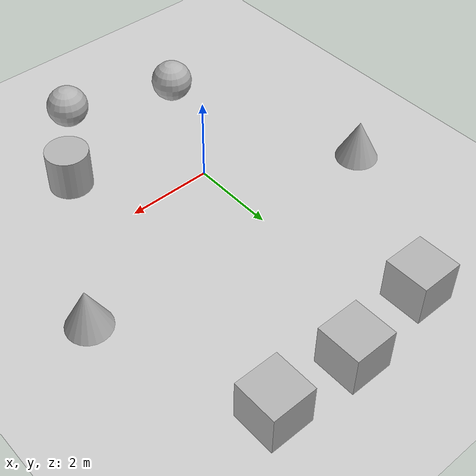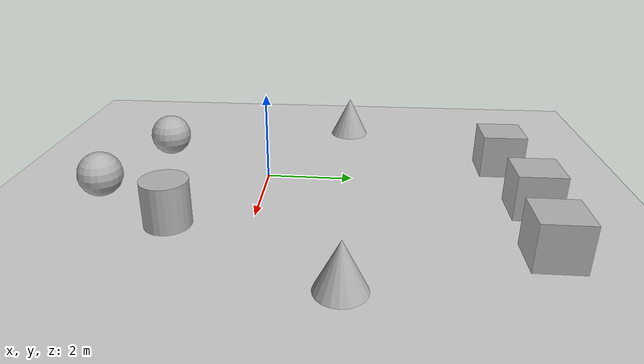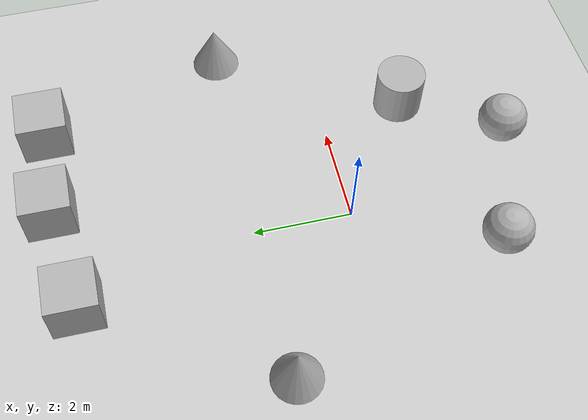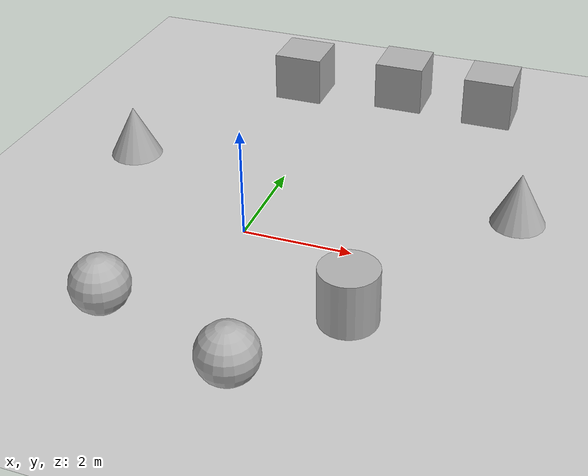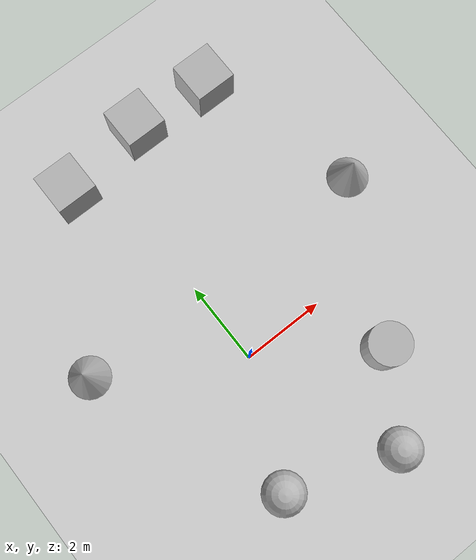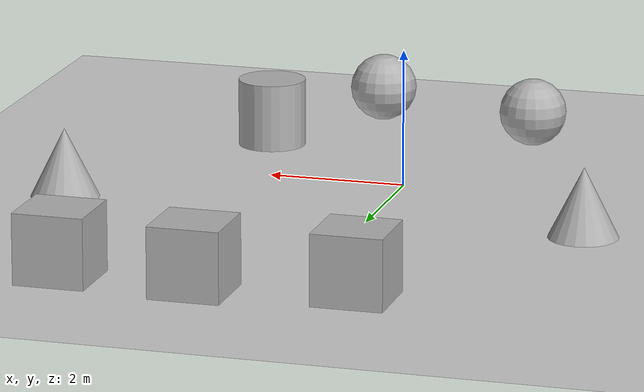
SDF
<sdf version='1.10'>
  <world name='empty'>
    <physics name='1ms' type='ignored'>
      <max_step_size>0.01</max_step_size>
      <real_time_factor>1</real_time_factor>
      <real_time_update_rate>1000</real_time_update_rate>
    </physics>
    <gravity>0 0 -9.8000000000000007</gravity>
    <magnetic_field>5.5644999999999998e-06 2.2875799999999999e-05 -4.2388400000000002e-05</magnetic_field>
    <atmosphere type='adiabatic'/>
    <scene>
      <ambient>0.400000006 0.400000006 0.400000006 1</ambient>
      <background>0.699999988 0.699999988 0.699999988 1</background>
      <shadows>true</shadows>
    </scene>
    <model name='ground_plane'>
      <static>true</static>
      <link name='link'>
        <collision name='collision'>
          <geometry>
            <plane>
              <normal>0 0 1</normal>
              <size>100 100</size>
            </plane>
          </geometry>
          <surface>
            <friction>
              <ode/>
            </friction>
            <bounce/>
            <contact/>
          </surface>
        </collision>
        <visual name='visual'>
          <geometry>
            <plane>
              <normal>0 0 1</normal>
              <size>100 100</size>
            </plane>
          </geometry>
          <material>
            <ambient>0.800000012 0.800000012 0.800000012 1</ambient>
            <diffuse>0.800000012 0.800000012 0.800000012 1</diffuse>
            <specular>0.800000012 0.800000012 0.800000012 1</specular>
          </material>
        </visual>
        <pose>0 0 0 0 0 0</pose>
        <inertial>
          <pose>0 0 0 0 0 0</pose>
          <mass>1</mass>
          <inertia>
            <ixx>1</ixx>
            <ixy>0</ixy>
            <ixz>0</ixz>
            <iyy>1</iyy>
            <iyz>0</iyz>
            <izz>1</izz>
          </inertia>
        </inertial>
        <enable_wind>false</enable_wind>
      </link>
      <pose>0 0 0 0 0 0</pose>
      <self_collide>false</self_collide>
    </model>
    <model name='cone'>
      <pose>4.5070674739859689 1.8987178639295552 0.49999999602630341 2.1472577256024191e-09 -8.0151925276328016e-09 -2.5941453501856055e-16</pose>
      <link name='cone_link'>
        <inertial>
          <inertia>
            <ixx>0.074999999999999997</ixx>
            <ixy>0</ixy>
            <ixz>0</ixz>
            <iyy>0.074999999999999997</iyy>
            <iyz>0</iyz>
            <izz>0.074999999999999997</izz>
          </inertia>
          <mass>1</mass>
          <pose>0 0 0 0 0 0</pose>
        </inertial>
        <collision name='cone_collision'>
          <geometry>
            <cone>
              <radius>0.5</radius>
              <length>1</length>
            </cone>
          </geometry>
          <surface>
            <friction>
              <ode/>
            </friction>
            <bounce/>
            <contact/>
          </surface>
        </collision>
        <visual name='cone_visual'>
          <geometry>
            <cone>
              <radius>0.5</radius>
              <length>1</length>
            </cone>
          </geometry>
          <material>
            <ambient>0.300000012 0.300000012 0.300000012 1</ambient>
            <diffuse>0.699999988 0.699999988 0.699999988 1</diffuse>
            <specular>1 1 1 1</specular>
          </material>
        </visual>
        <pose>0 0 0 0 0 0</pose>
        <enable_wind>false</enable_wind>
      </link>
      <static>false</static>
      <self_collide>false</self_collide>
    </model>
    <model name='cylinder'>
      <pose>2.4995603911911628 -1.710239607822482 0.49999999631413172 -2.7330925997471153e-18 -3.4015144727910478e-18 -2.2385645989373319e-19</pose>
      <link name='cylinder_link'>
        <inertial>
          <inertia>
            <ixx>0.14580000000000001</ixx>
            <ixy>0</ixy>
            <ixz>0</ixz>
            <iyy>0.14580000000000001</iyy>
            <iyz>0</iyz>
            <izz>0.125</izz>
          </inertia>
          <mass>1</mass>
          <pose>0 0 0 0 0 0</pose>
        </inertial>
        <collision name='cylinder_collision'>
          <geometry>
            <cylinder>
              <radius>0.5</radius>
              <length>1</length>
            </cylinder>
          </geometry>
          <surface>
            <friction>
              <ode/>
            </friction>
            <bounce/>
            <contact/>
          </surface>
        </collision>
        <visual name='cylinder_visual'>
          <geometry>
            <cylinder>
              <radius>0.5</radius>
              <length>1</length>
            </cylinder>
          </geometry>
          <material>
            <ambient>0.300000012 0.300000012 0.300000012 1</ambient>
            <diffuse>0.699999988 0.699999988 0.699999988 1</diffuse>
            <specular>1 1 1 1</specular>
          </material>
        </visual>
        <pose>0 0 0 0 0 0</pose>
        <enable_wind>false</enable_wind>
      </link>
      <static>false</static>
      <self_collide>false</self_collide>
    </model>
    <model name='box'>
      <pose>-0.87076277008966585 5.5748683440829101 0.5 0 0 0</pose>
      <link name='box_link'>
        <inertial>
          <inertia>
            <ixx>0.16666</ixx>
            <ixy>0</ixy>
            <ixz>0</ixz>
            <iyy>0.16666</iyy>
            <iyz>0</iyz>
            <izz>0.16666</izz>
          </inertia>
          <mass>1</mass>
          <pose>0 0 0 0 0 0</pose>
        </inertial>
        <collision name='box_collision'>
          <geometry>
            <box>
              <size>1 1 1</size>
            </box>
          </geometry>
          <surface>
            <friction>
              <ode/>
            </friction>
            <bounce/>
            <contact/>
          </surface>
        </collision>
        <visual name='box_visual'>
          <geometry>
            <box>
              <size>1 1 1</size>
            </box>
          </geometry>
          <material>
            <ambient>0.300000012 0.300000012 0.300000012 1</ambient>
            <diffuse>0.699999988 0.699999988 0.699999988 1</diffuse>
            <specular>1 1 1 1</specular>
          </material>
        </visual>
        <pose>0 0 0 0 0 0</pose>
        <enable_wind>false</enable_wind>
      </link>
      <static>false</static>
      <self_collide>false</self_collide>
    </model>
    <model name='box_0'>
      <pose>1.2884297873177566 5.8570983238057925 0.5 0 0 0</pose>
      <link name='box_link'>
        <inertial>
          <inertia>
            <ixx>0.16666</ixx>
            <ixy>0</ixy>
            <ixz>0</ixz>
            <iyy>0.16666</iyy>
            <iyz>0</iyz>
            <izz>0.16666</izz>
          </inertia>
          <mass>1</mass>
          <pose>0 0 0 0 0 0</pose>
        </inertial>
        <collision name='box_collision'>
          <geometry>
            <box>
              <size>1 1 1</size>
            </box>
          </geometry>
          <surface>
            <friction>
              <ode/>
            </friction>
            <bounce/>
            <contact/>
          </surface>
        </collision>
        <visual name='box_visual'>
          <geometry>
            <box>
              <size>1 1 1</size>
            </box>
          </geometry>
          <material>
            <ambient>0.300000012 0.300000012 0.300000012 1</ambient>
            <diffuse>0.699999988 0.699999988 0.699999988 1</diffuse>
            <specular>1 1 1 1</specular>
          </material>
        </visual>
        <pose>0 0 0 0 0 0</pose>
        <enable_wind>false</enable_wind>
      </link>
      <static>false</static>
      <self_collide>false</self_collide>
    </model>
    <model name='box_1'>
      <pose>3.2116736151998513 5.7537923307717147 0.5 0 0 0</pose>
      <link name='box_link'>
        <inertial>
          <inertia>
            <ixx>0.16666</ixx>
            <ixy>0</ixy>
            <ixz>0</ixz>
            <iyy>0.16666</iyy>
            <iyz>0</iyz>
            <izz>0.16666</izz>
          </inertia>
          <mass>1</mass>
          <pose>0 0 0 0 0 0</pose>
        </inertial>
        <collision name='box_collision'>
          <geometry>
            <box>
              <size>1 1 1</size>
            </box>
          </geometry>
          <surface>
            <friction>
              <ode/>
            </friction>
            <bounce/>
            <contact/>
          </surface>
        </collision>
        <visual name='box_visual'>
          <geometry>
            <box>
              <size>1 1 1</size>
            </box>
          </geometry>
          <material>
            <ambient>0.300000012 0.300000012 0.300000012 1</ambient>
            <diffuse>0.699999988 0.699999988 0.699999988 1</diffuse>
            <specular>1 1 1 1</specular>
          </material>
        </visual>
        <pose>0 0 0 0 0 0</pose>
        <enable_wind>false</enable_wind>
      </link>
      <static>false</static>
      <self_collide>false</self_collide>
    </model>
    <model name='sphere'>
      <pose>-1.2581936727758221 -2.7498126592616607 0.5 0 0 0</pose>
      <link name='sphere_link'>
        <inertial>
          <inertia>
            <ixx>0.10000000000000001</ixx>
            <ixy>0</ixy>
            <ixz>0</ixz>
            <iyy>0.10000000000000001</iyy>
            <iyz>0</iyz>
            <izz>0.10000000000000001</izz>
          </inertia>
          <mass>1</mass>
          <pose>0 0 0 0 0 0</pose>
        </inertial>
        <collision name='sphere_collision'>
          <geometry>
            <sphere>
              <radius>0.5</radius>
            </sphere>
          </geometry>
          <surface>
            <friction>
              <ode/>
            </friction>
            <bounce/>
            <contact/>
          </surface>
        </collision>
        <visual name='sphere_visual'>
          <geometry>
            <sphere>
              <radius>0.5</radius>
            </sphere>
          </geometry>
          <material>
            <ambient>0.300000012 0.300000012 0.300000012 1</ambient>
            <diffuse>0.699999988 0.699999988 0.699999988 1</diffuse>
            <specular>1 1 1 1</specular>
          </material>
        </visual>
        <pose>0 0 0 0 0 0</pose>
        <enable_wind>false</enable_wind>
      </link>
      <static>false</static>
      <self_collide>false</self_collide>
    </model>
    <model name='sphere_0'>
      <pose>1.288429648377158 -3.5908630058379987 0.5 0 0 0</pose>
      <link name='sphere_link'>
        <inertial>
          <inertia>
            <ixx>0.10000000000000001</ixx>
            <ixy>0</ixy>
            <ixz>0</ixz>
            <iyy>0.10000000000000001</iyy>
            <iyz>0</iyz>
            <izz>0.10000000000000001</izz>
          </inertia>
          <mass>1</mass>
          <pose>0 0 0 0 0 0</pose>
        </inertial>
        <collision name='sphere_collision'>
          <geometry>
            <sphere>
              <radius>0.5</radius>
            </sphere>
          </geometry>
          <surface>
            <friction>
              <ode/>
            </friction>
            <bounce/>
            <contact/>
          </surface>
        </collision>
        <visual name='sphere_visual'>
          <geometry>
            <sphere>
              <radius>0.5</radius>
            </sphere>
          </geometry>
          <material>
            <ambient>0.300000012 0.300000012 0.300000012 1</ambient>
            <diffuse>0.699999988 0.699999988 0.699999988 1</diffuse>
            <specular>1 1 1 1</specular>
          </material>
        </visual>
        <pose>0 0 0 0 0 0</pose>
        <enable_wind>false</enable_wind>
      </link>
      <static>false</static>
      <self_collide>false</self_collide>
    </model>
    <model name='cone_0'>
      <pose>-3.0973756209739878 1.8763904915638487 0.5 0 0 0</pose>
      <link name='cone_link'>
        <inertial>
          <inertia>
            <ixx>0.074999999999999997</ixx>
            <ixy>0</ixy>
            <ixz>0</ixz>
            <iyy>0.074999999999999997</iyy>
            <iyz>0</iyz>
            <izz>0.074999999999999997</izz>
          </inertia>
          <mass>1</mass>
          <pose>0 0 0 0 0 0</pose>
        </inertial>
        <collision name='cone_collision'>
          <geometry>
            <cone>
              <radius>0.5</radius>
              <length>1</length>
            </cone>
          </geometry>
          <surface>
            <friction>
              <ode/>
            </friction>
            <bounce/>
            <contact/>
          </surface>
        </collision>
        <visual name='cone_visual'>
          <geometry>
            <cone>
              <radius>0.5</radius>
              <length>1</length>
            </cone>
          </geometry>
          <material>
            <ambient>0.300000012 0.300000012 0.300000012 1</ambient>
            <diffuse>0.699999988 0.699999988 0.699999988 1</diffuse>
            <specular>1 1 1 1</specular>
          </material>
        </visual>
        <pose>0 0 0 0 0 0</pose>
        <enable_wind>false</enable_wind>
      </link>
      <static>false</static>
      <self_collide>false</self_collide>
    </model>
    <light name='sun' type='directional'>
      <pose>0 0 10 0 0 0</pose>
      <cast_shadows>true</cast_shadows>
      <intensity>1</intensity>
      <direction>-0.5 0.10000000000000001 -0.90000000000000002</direction>
      <diffuse>0.800000012 0.800000012 0.800000012 1</diffuse>
      <specular>0.200000003 0.200000003 0.200000003 1</specular>
      <attenuation>
        <range>1000</range>
        <linear>0.01</linear>
        <constant>0.90000000000000002</constant>
        <quadratic>0.001</quadratic>
      </attenuation>
      <spot>
        <inner_angle>0</inner_angle>
        <outer_angle>0</outer_angle>
        <falloff>0</falloff>
      </spot>
    </light>
  </world>
</sdf>
